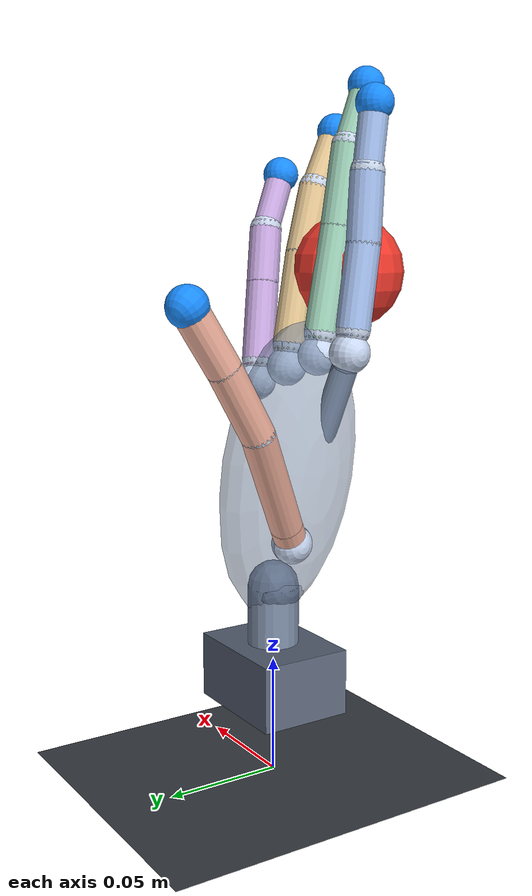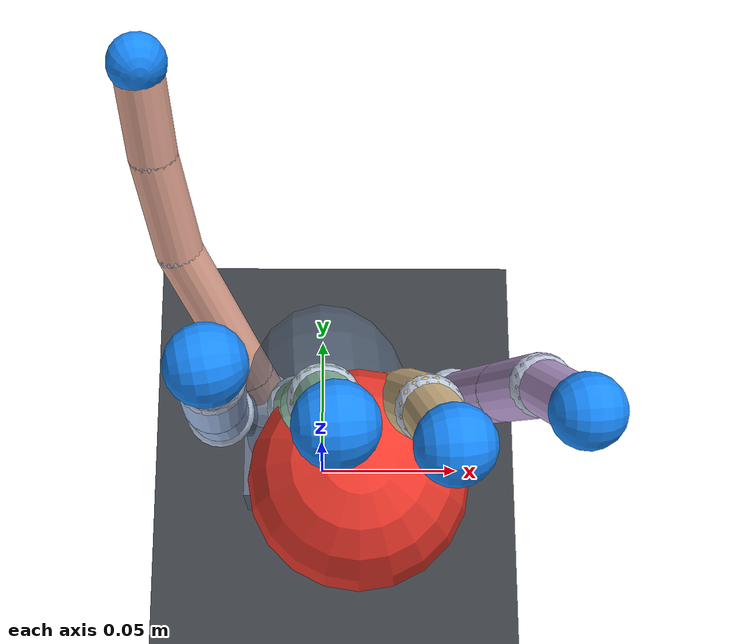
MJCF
<?xml version="1.0" encoding="utf-8"?>
<mujoco model="hand_stage1_ball_scene_primitive">
  <include file="hand_stage1_primitive.xml"/>
  <visual>
    <global azimuth="145" elevation="-25" offwidth="1280" offheight="900"/>
  </visual>
  <asset>
    <texture type="2d" name="ground_checker" builtin="checker" rgb1="0.18 0.20 0.22" rgb2="0.28 0.30 0.32" width="300" height="300"/>
    <material name="ground_mat" texture="ground_checker" texrepeat="4 4" reflectance="0.15"/>
  </asset>
  <worldbody>
    <light pos="0 -0.3 0.8" dir="0 0 -1" directional="true"/>
    <light pos="-0.25 0.25 0.5"/>
    <geom name="ground" type="plane" pos="0 0 0" size="0.4 0.4 0.02" material="ground_mat" contype="1" conaffinity="1"/>
    <body name="ball" pos="0.01 -0.045 0.215">
      <freejoint name="ball_freejoint"/>
      <geom name="ball_geom" type="sphere" size="0.025" rgba="0.95 0.23 0.18 1" mass="0.03" friction="0.8 0.05 0.001" condim="3"/>
    </body>
    <camera name="front" pos="0.20 -0.34 0.29" xyaxes="0.834219 0.551433 0 -0.16379 0.247785 0.954869" fovy="45"/>
    <camera name="side" pos="0.34 0.02 0.24" xyaxes="-0.190477 0.981692 0 -0.169999 -0.0329848 0.984892" fovy="45"/>
    <camera name="top" pos="0.02 -0.06 0.48" xyaxes="0.707107 0.707107 0 -0.705346 0.705346 0.0705346" fovy="45"/>
  </worldbody>
</mujoco>

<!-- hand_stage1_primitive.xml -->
<mujoco model="hand_stage1_primitive">
  <compiler angle="radian" autolimits="true"/>
  <option timestep="0.002" gravity="0 0 -9.81"/>
  <default>
    <joint damping="0.08" armature="0.0001"/>
    <geom solref="0.01 1" solimp="0.9 0.95 0.001"/>
  </default>
  <statistic center="0.005 -0.045 0.18" extent="0.24"/>
  <worldbody>
    <body name="hand_base_link" pos="0 0 0.05">
      <!--TODO: primitive geoms are provisional because exported STL meshes are not clean per-link visuals.-->
      <inertial pos="0 0 0" mass="0.012576523" diaginertia="1e-5 1e-5 1e-5"/>
      <geom name="hand_base_link_primitive" type="box" pos="0 0 -0.006" size="0.026 0.020 0.014" rgba="0.36 0.40 0.48 1" friction="0.8 0.04 0.001"/>
      <geom name="hand_base_link_axis_marker" type="capsule" fromto="0 0 -0.020 0 0 0.020" size="0.006" rgba="0.58 0.64 0.74 1" contype="0" conaffinity="0"/>
      <body name="wrist_middle_link" pos="0 0 0.015" quat="0.021731799 0.031494284 -0.70640636 -0.70677146">
        <joint name="wrist_1_joint" type="hinge" axis="0 0 -1" damping="0.08" armature="0.0001" limited="true" range="-0.8 0.8"/>
        <inertial pos="0 0 0" mass="0.010062" diaginertia="1e-5 1e-5 1e-5"/>
        <geom name="wrist_middle_link_primitive" type="capsule" fromto="0 -0.018 0 0 0.018 0" size="0.011" rgba="0.48 0.54 0.64 1" friction="0.8 0.04 0.001"/>
        <geom name="wrist_middle_link_joint_marker" type="sphere" pos="0 0 0" size="0.007" rgba="0.72 0.78 0.88 0.85" contype="0" conaffinity="0"/>
        <body name="palm_link" pos="-0.0008 0.020264 -0.0007" quat="0.70420975 -0.063939763 -0.70421022 0.063939763">
          <joint name="wrist_2_joint" type="hinge" axis="0 0 -1" damping="0.08" armature="0.0001" limited="true" range="-0.8 0.8"/>
          <inertial pos="0 0 0" mass="0.14137095" diaginertia="1e-5 1e-5 1e-5"/>
          <geom name="palm_link_hub" type="sphere" pos="0 0 0" size="0.014" rgba="0.38 0.45 0.56 0.65" contype="0" conaffinity="0"/>
          <geom name="palm_link_ellipsoid" type="ellipsoid" pos="0 0.048 0.002" size="0.030 0.064 0.024" rgba="0.42 0.50 0.62 0.50" friction="0.8 0.04 0.001"/>
          <geom name="palm_link_index_mcp_flex_joint_spoke" type="capsule" fromto="0 0 0 -0.0014333 0.10034 -0.024803" size="0.0055" rgba="0.40 0.48 0.60 0.88" friction="0.8 0.04 0.001"/>
          <geom name="palm_link_0_joint_marker" type="sphere" pos="-0.0014333 0.10034 -0.024803" size="0.0085" rgba="0.78 0.84 0.94 0.95" contype="0" conaffinity="0"/>
          <geom name="palm_link_middle_mcp_flex_joint_spoke" type="capsule" fromto="0 0 0 -0.0014333 0.097567 -0.0048026" size="0.0055" rgba="0.40 0.48 0.60 0.88" friction="0.8 0.04 0.001"/>
          <geom name="palm_link_1_joint_marker" type="sphere" pos="-0.0014333 0.097567 -0.0048026" size="0.0085" rgba="0.78 0.84 0.94 0.95" contype="0" conaffinity="0"/>
          <geom name="palm_link_ring_mcp_flex_joint_spoke" type="capsule" fromto="0 0 0 -0.0014333 0.090989 0.015197" size="0.0055" rgba="0.40 0.48 0.60 0.88" friction="0.8 0.04 0.001"/>
          <geom name="palm_link_2_joint_marker" type="sphere" pos="-0.0014333 0.090989 0.015197" size="0.0085" rgba="0.78 0.84 0.94 0.95" contype="0" conaffinity="0"/>
          <geom name="palm_link_little_mcp_flex_joint_spoke" type="capsule" fromto="0 0 0 -0.0014333 0.082348 0.035197" size="0.0055" rgba="0.40 0.48 0.60 0.88" friction="0.8 0.04 0.001"/>
          <geom name="palm_link_3_joint_marker" type="sphere" pos="-0.0014333 0.082348 0.035197" size="0.0085" rgba="0.78 0.84 0.94 0.95" contype="0" conaffinity="0"/>
          <geom name="palm_link_thumb_root_connector_fixed_joint_spoke" type="capsule" fromto="0 0 0 0.0064688 0.019332 -0.016418" size="0.0055" rgba="0.40 0.48 0.60 0.88" friction="0.8 0.04 0.001"/>
          <geom name="palm_link_4_joint_marker" type="sphere" pos="0.0064688 0.019332 -0.016418" size="0.0085" rgba="0.78 0.84 0.94 0.95" contype="0" conaffinity="0"/>
          <body name="index_mcp_flex_link" pos="-0.0014333 0.10034 -0.024803" quat="0.70710548 0 0.70710808 0">
            <joint name="index_mcp_flex_joint" type="hinge" axis="0 0 -1" damping="0.08" armature="0.0001" limited="true" range="-0.5 0.5"/>
            <inertial pos="0 0 0" mass="0.0017548" diaginertia="1e-5 1e-5 1e-5"/>
            <geom name="index_mcp_flex_link_primitive" type="capsule" fromto="0 0 0 -0.00051676 0.0097417 -0.00026674" size="0.0058" rgba="0.64 0.74 0.92 1" friction="0.9 0.04 0.001"/>
            <geom name="index_mcp_flex_link_base_marker" type="sphere" pos="0 0 0" size="0.0058" rgba="0.78 0.83 0.91 0.9" contype="0" conaffinity="0"/>
            <geom name="index_mcp_flex_link_tip_marker" type="sphere" pos="-0.00051676 0.0097417 -0.00026674" size="0.0058" rgba="0.78 0.83 0.91 0.9" contype="0" conaffinity="0"/>
            <body name="index_proximal_phalanx_link" pos="-0.00051676 0.0097417 -0.00026674" quat="0.70685724 -0.018735042 0.70685984 0.018735111">
              <joint name="index_mcp_abd_joint" type="hinge" axis="0 0 -1" damping="0.08" armature="0.0001" limited="true" range="-0.2 1.2"/>
              <inertial pos="0 0 0" mass="0.0070311" diaginertia="1e-5 1e-5 1e-5"/>
              <geom name="index_proximal_phalanx_link_primitive" type="capsule" fromto="0 0 0 -0.00021096 0.034999 0.00025" size="0.0072" rgba="0.64 0.74 0.92 1" friction="0.9 0.04 0.001"/>
              <geom name="index_proximal_phalanx_link_base_marker" type="sphere" pos="0 0 0" size="0.0072" rgba="0.78 0.83 0.91 0.9" contype="0" conaffinity="0"/>
              <geom name="index_proximal_phalanx_link_tip_marker" type="sphere" pos="-0.00021096 0.034999 0.00025" size="0.0072" rgba="0.78 0.83 0.91 0.9" contype="0" conaffinity="0"/>
              <body name="index_proximal_inter_link" pos="-0.00021096 0.034999 0.00025" quat="0.97605079 0.012184661 0.058846008 0.20907783">
                <joint name="index_pip_joint" type="hinge" axis="0.10977 -0.048393 -0.99278" damping="0.08" armature="0.0001" limited="true" range="0 1.57"/>
                <inertial pos="0 0 0" mass="0.0059704873" diaginertia="1e-5 1e-5 1e-5"/>
                <geom name="index_proximal_inter_link_primitive" type="capsule" fromto="0 0 0 0.0097266 0.027252 -0.00045437" size="0.0072" rgba="0.64 0.74 0.92 1" friction="0.9 0.04 0.001"/>
                <geom name="index_proximal_inter_link_base_marker" type="sphere" pos="0 0 0" size="0.0072" rgba="0.78 0.83 0.91 0.9" contype="0" conaffinity="0"/>
                <geom name="index_proximal_inter_link_tip_marker" type="sphere" pos="0.0097266 0.027252 -0.00045437" size="0.0072" rgba="0.78 0.83 0.91 0.9" contype="0" conaffinity="0"/>
                <body name="index_distal_link" pos="0.0097266 0.027252 -0.00045437" quat="1 0 0 0">
                  <joint name="index_dip_joint" type="hinge" axis="0 0 -1" damping="0.08" armature="0.0001" limited="true" range="0 1.2"/>
                  <inertial pos="0 0 0" mass="0.0053528" diaginertia="1e-5 1e-5 1e-5"/>
                  <geom name="index_distal_link_primitive" type="capsule" fromto="0 0 0 0.011092027 0.02570919 -6.7061438e-05" size="0.0062" rgba="0.64 0.74 0.92 1" friction="0.9 0.04 0.001"/>
                  <site name="index_tip_site" pos="0.011092027 0.02570919 -6.7061438e-05" size="0.008" rgba="0.10 0.55 1.0 1" type="sphere"/>
                  <geom name="index_distal_link_base_marker" type="sphere" pos="0 0 0" size="0.0062" rgba="0.78 0.83 0.91 0.9" contype="0" conaffinity="0"/>
                  <geom name="index_distal_link_tip_marker" type="sphere" pos="0.011092027 0.02570919 -6.7061438e-05" size="0.0062" rgba="0.78 0.83 0.91 0.9" contype="0" conaffinity="0"/>
                </body>
              </body>
            </body>
          </body>
          <body name="middle_mcp_flex_link" pos="-0.0014333 0.097567 -0.0048026" quat="0.70710548 0 0.70710808 0">
            <joint name="middle_mcp_flex_joint" type="hinge" axis="0 0 -1" damping="0.08" armature="0.0001" limited="true" range="-0.5 0.5"/>
            <inertial pos="0 0 0" mass="0.0017548053" diaginertia="1e-5 1e-5 1e-5"/>
            <geom name="middle_mcp_flex_link_primitive" type="capsule" fromto="0 0 0 -0.00064254 0.0097342 -0.00026674" size="0.0058" rgba="0.62 0.82 0.72 1" friction="0.9 0.04 0.001"/>
            <geom name="middle_mcp_flex_link_base_marker" type="sphere" pos="0 0 0" size="0.0058" rgba="0.78 0.83 0.91 0.9" contype="0" conaffinity="0"/>
            <geom name="middle_mcp_flex_link_tip_marker" type="sphere" pos="-0.00064254 0.0097342 -0.00026674" size="0.0058" rgba="0.78 0.83 0.91 0.9" contype="0" conaffinity="0"/>
            <body name="middle_proximal_phalanx_link" pos="-0.00064254 0.0097342 -0.00026674" quat="0.48325474 0.48325652 0.51620245 0.51620056">
              <joint name="middle_mcp_abd_joint" type="hinge" axis="0 0 -1" damping="0.08" armature="0.0001" limited="true" range="-0.2 1.2"/>
              <inertial pos="0 0 0" mass="0.0090532579" diaginertia="1e-5 1e-5 1e-5"/>
              <geom name="middle_proximal_phalanx_link_primitive" type="capsule" fromto="0 0 0 0.044915 -0.0027578 -0.0003" size="0.0072" rgba="0.62 0.82 0.72 1" friction="0.9 0.04 0.001"/>
              <geom name="middle_proximal_phalanx_link_base_marker" type="sphere" pos="0 0 0" size="0.0072" rgba="0.78 0.83 0.91 0.9" contype="0" conaffinity="0"/>
              <geom name="middle_proximal_phalanx_link_tip_marker" type="sphere" pos="0.044915 -0.0027578 -0.0003" size="0.0072" rgba="0.78 0.83 0.91 0.9" contype="0" conaffinity="0"/>
              <body name="middle_proximal_inter_link" pos="0.044915 -0.0027578 -0.0003" quat="1 0 0 0">
                <joint name="middle_pip_joint" type="hinge" axis="0 0 -1" damping="0.08" armature="0.0001" limited="true" range="0 1.57"/>
                <inertial pos="0 0 0" mass="0.0073249127" diaginertia="1e-5 1e-5 1e-5"/>
                <geom name="middle_proximal_inter_link_primitive" type="capsule" fromto="0 0 0 0.03498 -0.0011685 -0.0002" size="0.0072" rgba="0.62 0.82 0.72 1" friction="0.9 0.04 0.001"/>
                <geom name="middle_proximal_inter_link_base_marker" type="sphere" pos="0 0 0" size="0.0072" rgba="0.78 0.83 0.91 0.9" contype="0" conaffinity="0"/>
                <geom name="middle_proximal_inter_link_tip_marker" type="sphere" pos="0.03498 -0.0011685 -0.0002" size="0.0072" rgba="0.78 0.83 0.91 0.9" contype="0" conaffinity="0"/>
                <body name="middle_distal_link" pos="0.03498 -0.0011685 -0.0002" quat="1 0 0 0">
                  <joint name="middle_dip_joint" type="hinge" axis="0 0 -1" damping="0.08" armature="0.0001" limited="true" range="0 1.2"/>
                  <inertial pos="0 0 0" mass="0.0053530376" diaginertia="1e-5 1e-5 1e-5"/>
                  <geom name="middle_distal_link_primitive" type="capsule" fromto="0 0 0 0.027301483 -0.006215095 -4.054405e-05" size="0.0062" rgba="0.62 0.82 0.72 1" friction="0.9 0.04 0.001"/>
                  <site name="middle_tip_site" pos="0.027301483 -0.006215095 -4.054405e-05" size="0.008" rgba="0.10 0.55 1.0 1" type="sphere"/>
                  <geom name="middle_distal_link_base_marker" type="sphere" pos="0 0 0" size="0.0062" rgba="0.78 0.83 0.91 0.9" contype="0" conaffinity="0"/>
                  <geom name="middle_distal_link_tip_marker" type="sphere" pos="0.027301483 -0.006215095 -4.054405e-05" size="0.0062" rgba="0.78 0.83 0.91 0.9" contype="0" conaffinity="0"/>
                </body>
              </body>
            </body>
          </body>
          <body name="ring_mcp_flex_link" pos="-0.0014333 0.090989 0.015197" quat="0.70710548 0 0.70710808 0">
            <joint name="ring_mcp_flex_joint" type="hinge" axis="-0.996 -0.089367 0" damping="0.08" armature="0.0001" limited="true" range="-0.5 0.5"/>
            <inertial pos="0 0 0" mass="0.0017548" diaginertia="1e-5 1e-5 1e-5"/>
            <geom name="ring_mcp_flex_link_primitive" type="capsule" fromto="0 0 0 -0.00087181 0.0097164 -0.00026674" size="0.0058" rgba="0.90 0.78 0.58 1" friction="0.9 0.04 0.001"/>
            <geom name="ring_mcp_flex_link_base_marker" type="sphere" pos="0 0 0" size="0.0058" rgba="0.78 0.83 0.91 0.9" contype="0" conaffinity="0"/>
            <geom name="ring_mcp_flex_link_tip_marker" type="sphere" pos="-0.00087181 0.0097164 -0.00026674" size="0.0058" rgba="0.78 0.83 0.91 0.9" contype="0" conaffinity="0"/>
            <body name="ring_proximal_phalanx_link" pos="-0.00087181 0.0097164 -0.00026674" quat="0.47713008 0.47713183 0.52186881 0.52186689">
              <joint name="ring_mcp_abd_joint" type="hinge" axis="0 0 -1" damping="0.08" armature="0.0001" limited="true" range="-0.2 1.2"/>
              <inertial pos="0 0 0" mass="0.0079217428" diaginertia="1e-5 1e-5 1e-5"/>
              <geom name="ring_proximal_phalanx_link_primitive" type="capsule" fromto="0 0 0 0.039933 -0.0023102 -0.0003" size="0.0072" rgba="0.90 0.78 0.58 1" friction="0.9 0.04 0.001"/>
              <geom name="ring_proximal_phalanx_link_base_marker" type="sphere" pos="0 0 0" size="0.0072" rgba="0.78 0.83 0.91 0.9" contype="0" conaffinity="0"/>
              <geom name="ring_proximal_phalanx_link_tip_marker" type="sphere" pos="0.039933 -0.0023102 -0.0003" size="0.0072" rgba="0.78 0.83 0.91 0.9" contype="0" conaffinity="0"/>
              <body name="ring_proximal_inter_link" pos="0.039933 -0.0023102 -0.0003" quat="0.70710548 0 0 -0.70710808">
                <joint name="ring_pip_joint" type="hinge" axis="0 0 -1" damping="0.08" armature="0.0001" limited="true" range="0 1.57"/>
                <inertial pos="0 0 0" mass="0.0062089763" diaginertia="1e-5 1e-5 1e-5"/>
                <geom name="ring_proximal_inter_link_primitive" type="capsule" fromto="0 0 0 0.0039743 0.029736 -0.0002" size="0.0072" rgba="0.90 0.78 0.58 1" friction="0.9 0.04 0.001"/>
                <geom name="ring_proximal_inter_link_base_marker" type="sphere" pos="0 0 0" size="0.0072" rgba="0.78 0.83 0.91 0.9" contype="0" conaffinity="0"/>
                <geom name="ring_proximal_inter_link_tip_marker" type="sphere" pos="0.0039743 0.029736 -0.0002" size="0.0072" rgba="0.78 0.83 0.91 0.9" contype="0" conaffinity="0"/>
                <body name="ring_distal_link" pos="0.0039743 0.029736 -0.0002" quat="0.70710548 0 0 0.70710808">
                  <joint name="ring_dip_joint" type="hinge" axis="0 0 -1" damping="0.08" armature="0.0001" limited="true" range="0 1.2"/>
                  <inertial pos="0 0 0" mass="0.0053519" diaginertia="1e-5 1e-5 1e-5"/>
                  <geom name="ring_distal_link_primitive" type="capsule" fromto="0 0 0 0.02673319 -0.008326736 -4.4812211e-05" size="0.0062" rgba="0.90 0.78 0.58 1" friction="0.9 0.04 0.001"/>
                  <site name="ring_tip_site" pos="0.02673319 -0.008326736 -4.4812211e-05" size="0.008" rgba="0.10 0.55 1.0 1" type="sphere"/>
                  <geom name="ring_distal_link_base_marker" type="sphere" pos="0 0 0" size="0.0062" rgba="0.78 0.83 0.91 0.9" contype="0" conaffinity="0"/>
                  <geom name="ring_distal_link_tip_marker" type="sphere" pos="0.02673319 -0.008326736 -4.4812211e-05" size="0.0062" rgba="0.78 0.83 0.91 0.9" contype="0" conaffinity="0"/>
                </body>
              </body>
            </body>
          </body>
          <body name="little_mcp_flex_link" pos="-0.0014333 0.082348 0.035197" quat="0.70710548 0 0.70710808 0">
            <joint name="little_mcp_flex_joint" type="hinge" axis="0 0 -1" damping="0.08" armature="0.0001" limited="true" range="-0.5 0.5"/>
            <inertial pos="0 0 0" mass="0.0017548056" diaginertia="1e-5 1e-5 1e-5"/>
            <geom name="little_mcp_flex_link_primitive" type="capsule" fromto="0 0 0 -0.0018088 0.0095862 -0.00026674" size="0.0058" rgba="0.78 0.66 0.88 1" friction="0.9 0.04 0.001"/>
            <geom name="little_mcp_flex_link_base_marker" type="sphere" pos="0 0 0" size="0.0058" rgba="0.78 0.83 0.91 0.9" contype="0" conaffinity="0"/>
            <geom name="little_mcp_flex_link_tip_marker" type="sphere" pos="-0.0018088 0.0095862 -0.00026674" size="0.0058" rgba="0.78 0.83 0.91 0.9" contype="0" conaffinity="0"/>
            <body name="little_proximal_phalanx_link" pos="-0.0018088 0.0095862 -0.00026674" quat="0.4512684 0.45127006 0.54438697 0.54438497">
              <joint name="little_mcp_abd_joint" type="hinge" axis="0 0 -1" damping="0.08" armature="0.0001" limited="true" range="-0.2 1.2"/>
              <inertial pos="0 0 0" mass="0.0070532455" diaginertia="1e-5 1e-5 1e-5"/>
              <geom name="little_proximal_phalanx_link_primitive" type="capsule" fromto="0 0 0 0.034983 -0.0010805 -0.0003" size="0.0072" rgba="0.78 0.66 0.88 1" friction="0.9 0.04 0.001"/>
              <geom name="little_proximal_phalanx_link_base_marker" type="sphere" pos="0 0 0" size="0.0072" rgba="0.78 0.83 0.91 0.9" contype="0" conaffinity="0"/>
              <geom name="little_proximal_phalanx_link_tip_marker" type="sphere" pos="0.034983 -0.0010805 -0.0003" size="0.0072" rgba="0.78 0.83 0.91 0.9" contype="0" conaffinity="0"/>
              <body name="little_proximal_inter_link" pos="0.034983 -0.0010805 -0.0003" quat="0.70710548 0 0 -0.70710808">
                <joint name="little_pip_joint" type="hinge" axis="0 0 -1" damping="0.08" armature="0.0001" limited="true" range="0 1.57"/>
                <inertial pos="0 0 0" mass="0.0050879458" diaginertia="1e-5 1e-5 1e-5"/>
                <geom name="little_proximal_inter_link_primitive" type="capsule" fromto="0 0 0 0.00077177 0.024988 -0.0002" size="0.0072" rgba="0.78 0.66 0.88 1" friction="0.9 0.04 0.001"/>
                <geom name="little_proximal_inter_link_base_marker" type="sphere" pos="0 0 0" size="0.0072" rgba="0.78 0.83 0.91 0.9" contype="0" conaffinity="0"/>
                <geom name="little_proximal_inter_link_tip_marker" type="sphere" pos="0.00077177 0.024988 -0.0002" size="0.0072" rgba="0.78 0.83 0.91 0.9" contype="0" conaffinity="0"/>
                <body name="little_distal_link" pos="0.00077177 0.024988 -0.0002" quat="0.70710548 0 0 0.70710808">
                  <joint name="little_dip_joint" type="hinge" axis="0 0 -1" damping="0.08" armature="0.0001" limited="true" range="0 1.2"/>
                  <inertial pos="0 0 0" mass="0.0053522" diaginertia="1e-5 1e-5 1e-5"/>
                  <geom name="little_distal_link_primitive" type="capsule" fromto="0 0 0 0.026961144 -0.007556097 -4.6194307e-05" size="0.0062" rgba="0.78 0.66 0.88 1" friction="0.9 0.04 0.001"/>
                  <site name="little_tip_site" pos="0.026961144 -0.007556097 -4.6194307e-05" size="0.008" rgba="0.10 0.55 1.0 1" type="sphere"/>
                  <geom name="little_distal_link_base_marker" type="sphere" pos="0 0 0" size="0.0062" rgba="0.78 0.83 0.91 0.9" contype="0" conaffinity="0"/>
                  <geom name="little_distal_link_tip_marker" type="sphere" pos="0.026961144 -0.007556097 -4.6194307e-05" size="0.0062" rgba="0.78 0.83 0.91 0.9" contype="0" conaffinity="0"/>
                </body>
              </body>
            </body>
          </body>
          <body name="thumb_root_connector_link" pos="0.0064688 0.019332 -0.016418" quat="0.24716295 -0.24716268 -0.5330396 0.77051273">
            <inertial pos="0 0 0" mass="0.0024893708" diaginertia="1e-5 1e-5 1e-5"/>
            <geom name="thumb_root_connector_link_primitive" type="capsule" fromto="0 0 0 -6.3364e-05 0.00012377 -0.011586" size="0.0068" rgba="0.95 0.70 0.62 1" friction="0.9 0.04 0.001"/>
            <geom name="thumb_root_connector_link_base_marker" type="sphere" pos="0 0 0" size="0.0068" rgba="0.78 0.83 0.91 0.9" contype="0" conaffinity="0"/>
            <geom name="thumb_root_connector_link_tip_marker" type="sphere" pos="-6.3364e-05 0.00012377 -0.011586" size="0.0068" rgba="0.78 0.83 0.91 0.9" contype="0" conaffinity="0"/>
            <body name="thumb_metacarpal_link" pos="-6.3364e-05 0.00012377 -0.011586" quat="0.32938029 -0.50061516 0.49011734 -0.63299138">
              <joint name="thumb_cmc_joint" type="hinge" axis="0 0 -1" damping="0.08" armature="0.0001" limited="true" range="-0.8 0.8"/>
              <inertial pos="0 0 0" mass="0.012375298" diaginertia="1e-5 1e-5 1e-5"/>
              <geom name="thumb_metacarpal_link_primitive" type="capsule" fromto="0 0 0 -0.016224 0.049404 -0.000175" size="0.0068" rgba="0.95 0.70 0.62 1" friction="0.9 0.04 0.001"/>
              <geom name="thumb_metacarpal_link_base_marker" type="sphere" pos="0 0 0" size="0.0068" rgba="0.78 0.83 0.91 0.9" contype="0" conaffinity="0"/>
              <geom name="thumb_metacarpal_link_tip_marker" type="sphere" pos="-0.016224 0.049404 -0.000175" size="0.0068" rgba="0.78 0.83 0.91 0.9" contype="0" conaffinity="0"/>
              <body name="thumb_proximal_link" pos="-0.016224 0.049404 -0.000175" quat="1 0 0 0">
                <joint name="thumb_mcp_joint" type="hinge" axis="0 0 -1" damping="0.08" armature="0.0001" limited="true" range="0 1.2"/>
                <inertial pos="0 0 0" mass="0.0062816" diaginertia="1e-5 1e-5 1e-5"/>
                <geom name="thumb_proximal_link_primitive" type="capsule" fromto="0 0 0 -0.0033345 0.031826 -0.000105" size="0.0068" rgba="0.95 0.70 0.62 1" friction="0.9 0.04 0.001"/>
                <geom name="thumb_proximal_link_base_marker" type="sphere" pos="0 0 0" size="0.0068" rgba="0.78 0.83 0.91 0.9" contype="0" conaffinity="0"/>
                <geom name="thumb_proximal_link_tip_marker" type="sphere" pos="-0.0033345 0.031826 -0.000105" size="0.0068" rgba="0.78 0.83 0.91 0.9" contype="0" conaffinity="0"/>
                <body name="thumb_distal_link" pos="-0.0033345 0.031826 -0.000105" quat="-3.6732051e-06 -0 0 1">
                  <joint name="thumb_ip_joint" type="hinge" axis="0 0 1" damping="0.08" armature="0.0001" limited="true" range="0 1.2"/>
                  <inertial pos="0 0 0" mass="0.0073168" diaginertia="1e-5 1e-5 1e-5"/>
                  <geom name="thumb_distal_link_primitive" type="capsule" fromto="0 0 0 0.00052061935 -0.027995157 -1.2280723e-05" size="0.0068" rgba="0.95 0.70 0.62 1" friction="0.9 0.04 0.001"/>
                  <site name="thumb_tip_site" pos="0.00052061935 -0.027995157 -1.2280723e-05" size="0.008" rgba="0.10 0.55 1.0 1" type="sphere"/>
                  <geom name="thumb_distal_link_base_marker" type="sphere" pos="0 0 0" size="0.0068" rgba="0.78 0.83 0.91 0.9" contype="0" conaffinity="0"/>
                  <geom name="thumb_distal_link_tip_marker" type="sphere" pos="0.00052061935 -0.027995157 -1.2280723e-05" size="0.0068" rgba="0.78 0.83 0.91 0.9" contype="0" conaffinity="0"/>
                </body>
              </body>
            </body>
          </body>
        </body>
      </body>
    </body>
  </worldbody>
</mujoco>
